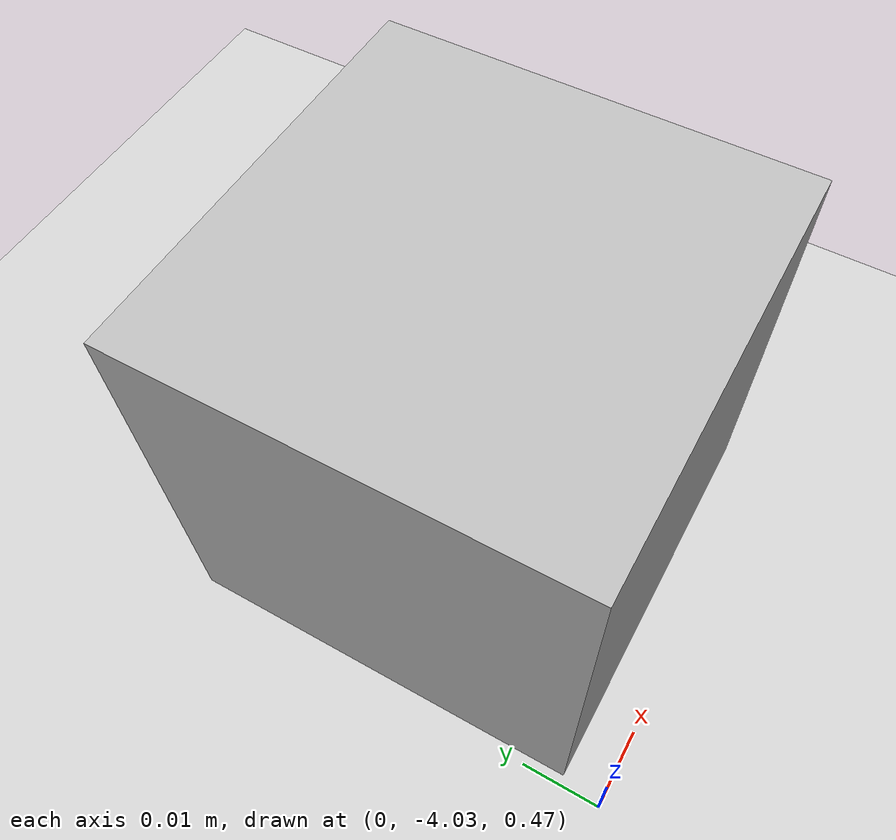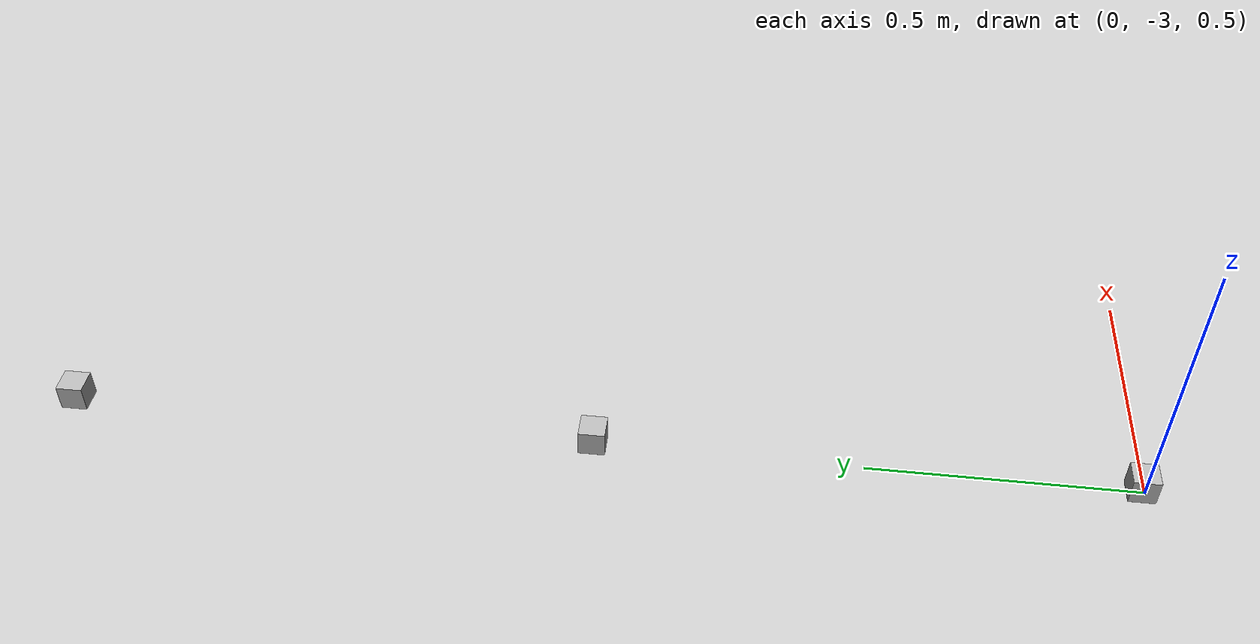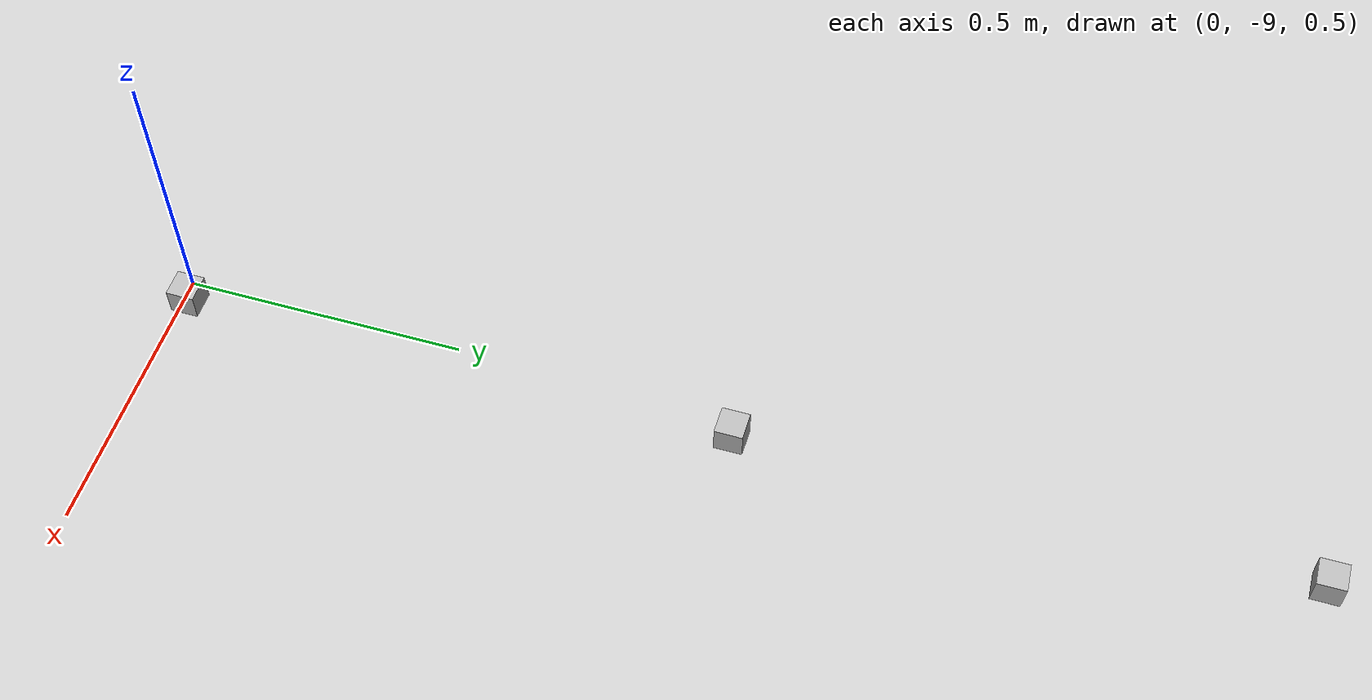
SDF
<sdf version="1.4">
 <world name="heightmap_test">
  <scene><ambient>0.5 0.5 0.5 1.0</ambient></scene>
  <light type="directional" name="sun">
   <pose>0 0 100 0 0 0</pose>
   <diffuse>0.5 0.5 0.5 1</diffuse>
   <specular>0.1 0.1 0.1 1</specular>
   <attenuation>
    <range>1000</range>
    <constant>0.9</constant>
    <linear>0.01</linear>
    <quadratic>0.001</quadratic>
   </attenuation>
   <direction>0.2 0.0 -1.0</direction>
  </light>
  <model name="box_10"><include><uri>model://box_test</uri><pose>0.028 -10 0.5 0 0 0</pose></include></model>
  <model name="box_9"><include><uri>model://box_test</uri><pose>0.025 -9 0.5 0 0 0</pose></include></model>
  <model name="box_8"><include><uri>model://box_test</uri><pose>0.025 -8 0.5 0 0 0</pose></include></model>
  <model name="box_7"><include><uri>model://box_test</uri><pose>0.025 -7 0.5 0 0 0</pose></include></model>
  <model name="box_6"><include><uri>model://box_test</uri><pose>0.025 -6 0.5 0 0 0</pose></include></model>
  <model name="box_5"><include><uri>model://box_test</uri><pose>0.025 -5 0.5 0 0 0</pose></include></model>
  <model name="box_4"><include><uri>model://box_test</uri><pose>0.025 -4 0.5 0 0 0</pose></include></model>
  <model name="box_3"><include><uri>model://box_test</uri><pose>0.025 -3 0.5 0 0 0</pose></include></model>
  <model name="box_2"><include><uri>model://box_test</uri><pose>0.025 -2 0.5 0 0 0</pose></include></model>
  <model name="box_1"><include><uri>model://box_test</uri><pose>0.025 -1 0.5 0 0 0</pose></include></model>
  <model name="box_far">
   <include><uri>model://box_test</uri><pose>1000.0 1000.0 1.0 0 0 0</pose></include>
  </model>
  <model name="ground_plane">
   <static>true</static>
   <link name="link">
    <collision name="collision">
     <geometry><plane><normal>0 0 1</normal><size>4000 4000</size></plane></geometry>
     <surface><friction><ode><mu>100</mu><mu2>50</mu2></ode></friction></surface>
    </collision>
    <visual name="visual">
     <cast_shadows>false</cast_shadows>
     <geometry><plane><normal>0 0 1</normal><size>4000 4000</size></plane></geometry>
     <material>
      <script><uri>file://media/materials/scripts/gazebo.material</uri><name>Gazebo/Grey</name></script>
     </material>
    </visual>
   </link>
  </model>
 </world>
</sdf>

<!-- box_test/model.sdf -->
<sdf version="1.4">
  <model name="box_test">
    <static>false</static>
    <link name="link">
      <inertial>
        <mass>100.0</mass>
        <inertia>
          <ixx>0.041667</ixx> <ixy>0.0</ixy> <ixz>0.0</ixz>
          <iyy>0.041667</iyy> <iyz>0.0</iyz>
          <izz>0.041667</izz>
        </inertia>
      </inertial>
      <collision name="collision">
        <geometry>
          <box>
            <size>0.05 0.05 0.05</size>
          </box>
        </geometry>
      </collision>
      <visual name="visual">
        <geometry>
          <box>
            <size>0.05 0.05 0.05</size>
          </box>
        </geometry>
      </visual>
    </link>
    <allow_auto_disable>false</allow_auto_disable>
  </model>
</sdf>
